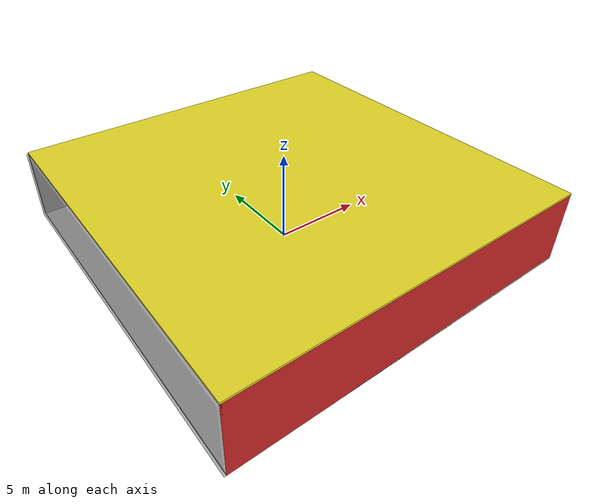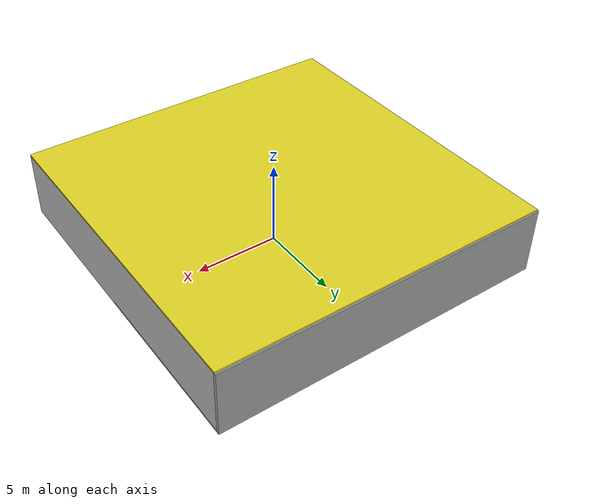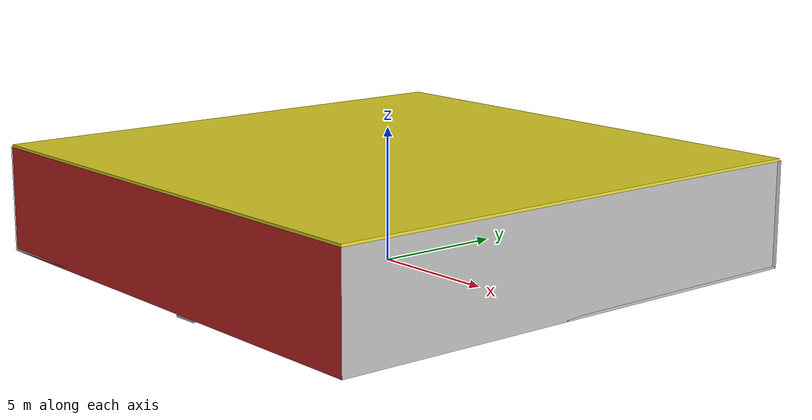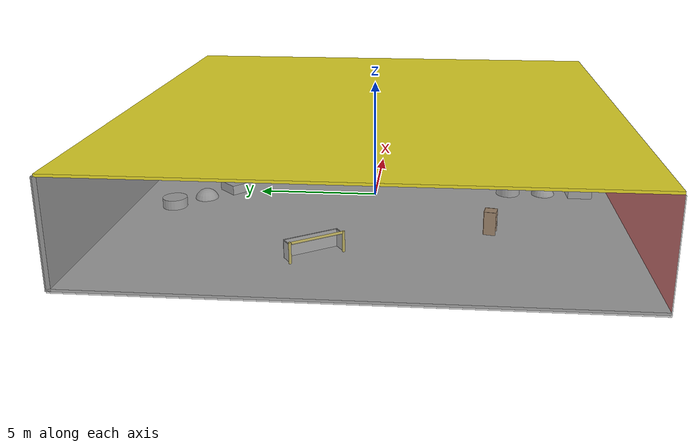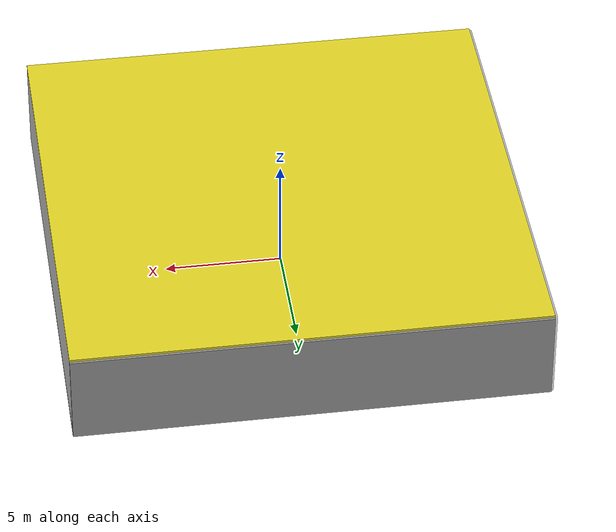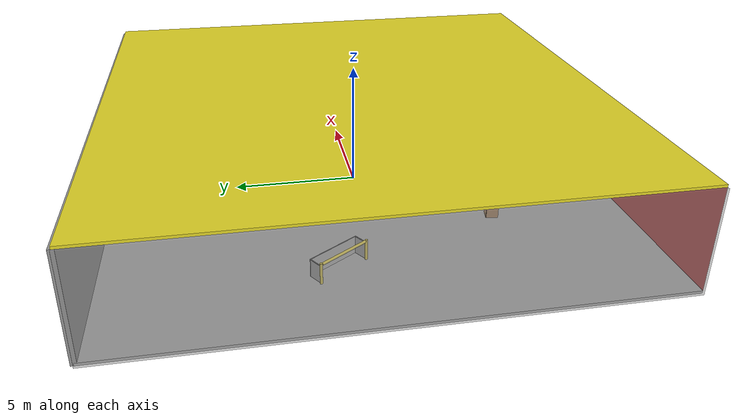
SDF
<sdf version="1.4">
 <world name="default">
  <physics type="ode">
   <max_step_size>0.001</max_step_size>
   <real_time_factor>1</real_time_factor>
   <real_time_update_rate>1000</real_time_update_rate>
   <gravity>0 0 -9.8</gravity>
  </physics>
  <scene><ambient>0.4 0.4 0.4 1</ambient><background>0.7 0.7 0.7 1</background><shadows>1</shadows></scene>
  <model name="Surrounding">
   <static>1</static>
   <link name="Ceiling">
    <collision name="Ceiling_Collision"><geometry><box><size>20 20 0.1</size></box></geometry></collision>
    <visual name="Ceiling_Visual">
     <geometry><box><size>20 20 0.1</size></box></geometry>
     <material>
      <script><uri>file://media/materials/scripts/gazebo.material</uri><name>Gazebo/Yellow</name></script>
     </material>
    </visual>
    <pose>0 0 4.05 0 0 0</pose>
   </link>
   <link name="Wall_South">
    <collision name="Wall_South_Collision">
     <geometry><box><size>20 0 4</size></box></geometry>
     <pose>0 0 2 0 -0 0</pose>
    </collision>
    <visual name="Wall_South_Visual">
     <pose>0 0 2 0 -0 0</pose>
     <geometry><box><size>20 0 4</size></box></geometry>
     <material>
      <script><uri>file://media/materials/scripts/gazebo.material</uri><name>Gazebo/Red</name></script>
     </material>
    </visual>
    <velocity_decay><linear>0</linear><angular>0</angular></velocity_decay>
    <pose>0 -10 0 0 -0 0</pose>
   </link>
   <link name="Wall_East">
    <collision name="Wall_21_Collision">
     <geometry><box><size>20 0 4</size></box></geometry>
     <pose>0 0 2 0 -0 0</pose>
    </collision>
    <visual name="Wall_21_Visual">
     <pose>0 0 2 0 -0 0</pose>
     <geometry><box><size>20 0 4</size></box></geometry>
     <material>
      <script><uri>file://media/materials/scripts/gazebo.material</uri><name>Gazebo/LightOff</name></script>
     </material>
    </visual>
    <velocity_decay><linear>0</linear><angular>0</angular></velocity_decay>
    <pose>10 0 0 0 -0 1.5708</pose>
   </link>
   <link name="Wall_North">
    <collision name="Wall_22_Collision">
     <geometry><box><size>20 0.2 4</size></box></geometry>
     <pose>0 0 2 0 -0 0</pose>
    </collision>
    <visual name="Wall_22_Visual">
     <pose>0 0 2 0 -0 0</pose>
     <geometry><box><size>20 0.2 4</size></box></geometry>
     <material>
      <script><uri>file://media/materials/scripts/gazebo.material</uri><name>Gazebo/GreyGradientSky</name></script>
     </material>
    </visual>
    <velocity_decay><linear>0</linear><angular>0</angular></velocity_decay>
    <pose>0 10 0 0 -0 0</pose>
   </link>
   <link name="Wall_West">
    <collision name="Wall_23_Collision">
     <geometry><box><size>20 0.2 4</size></box></geometry>
     <pose>0 0 2 0 -0 0</pose>
    </collision>
    <visual name="Wall_23_Visual">
     <pose>0 0 2 0 -0 0</pose>
     <geometry><box><size>20 0.2 4</size></box></geometry>
     <material>
      <script><uri>file://media/materials/scripts/gazebo.material</uri><name>Gazebo/GreyTransparent</name></script>
     </material>
    </visual>
    <velocity_decay><linear>0</linear><angular>0</angular></velocity_decay>
    <pose>-10 0 0 0 0 -1.5708</pose>
   </link>
   <link name="Ground_link">
    <collision name="collision">
     <pose>0 0 .05 0 -0 0</pose>
     <geometry><box><size>20 20 0.1</size></box></geometry>
    </collision>
    <visual name="visual">
     <pose>0 0 .05 0 -0 0</pose>
     <geometry><box><size>20 20 0.1</size></box></geometry>
     <material>
      <script><uri>file://media/materials/scripts/gazebo.material</uri><name>Gazebo/PioneerBody</name></script>
     </material>
    </visual>
   </link>
   <static>1</static>
  </model>
  <spherical_coordinates>
   <surface_model>EARTH_WGS84</surface_model>
   <latitude_deg>0</latitude_deg>
   <longitude_deg>0</longitude_deg>
   <elevation>0</elevation>
   <heading_deg>0</heading_deg>
  </spherical_coordinates>
  <light name="lightball_0" type="diffuse">
   <diffuse>0.8 0.8 0.8 1</diffuse>
   <specular>0.2 0.2 0.2 1</specular>
   <attenuation>
    <range>100</range>
    <constant>0.7</constant>
    <linear>0.01</linear>
    <quadratic>0.001</quadratic>
   </attenuation>
   <direction>-0.5 0.1 -0.9</direction>
   <pose>2.77074673341 1.29480423304 0.894307142504 0 0 0</pose>
  </light>
  <light name="lightball_1" type="diffuse">
   <diffuse>0.8 0.8 0.8 1</diffuse>
   <specular>0.2 0.2 0.2 1</specular>
   <attenuation>
    <range>100</range>
    <constant>0.7</constant>
    <linear>0.01</linear>
    <quadratic>0.001</quadratic>
   </attenuation>
   <direction>-0.5 0.1 -0.9</direction>
   <pose>7.88319031961 7.49591136902 3.34892950769 0 0 0</pose>
  </light>
  <light name="lightball_2" type="diffuse">
   <diffuse>0.8 0.8 0.8 1</diffuse>
   <specular>0.2 0.2 0.2 1</specular>
   <attenuation>
    <range>100</range>
    <constant>0.7</constant>
    <linear>0.01</linear>
    <quadratic>0.001</quadratic>
   </attenuation>
   <direction>-0.5 0.1 -0.9</direction>
   <pose>3.84524929823 9.18764085021 1.45797759008 0 0 0</pose>
  </light>
  <light name="lightball_3" type="diffuse">
   <diffuse>0.8 0.8 0.8 1</diffuse>
   <specular>0.2 0.2 0.2 1</specular>
   <attenuation>
    <range>100</range>
    <constant>0.7</constant>
    <linear>0.01</linear>
    <quadratic>0.001</quadratic>
   </attenuation>
   <direction>-0.5 0.1 -0.9</direction>
   <pose>8.29260102463 -7.54291536438 2.02276269698 0 0 0</pose>
  </light>
  <light name="lightball_4" type="diffuse">
   <diffuse>0.8 0.8 0.8 1</diffuse>
   <specular>0.2 0.2 0.2 1</specular>
   <attenuation>
    <range>100</range>
    <constant>0.7</constant>
    <linear>0.01</linear>
    <quadratic>0.001</quadratic>
   </attenuation>
   <direction>-0.5 0.1 -0.9</direction>
   <pose>8.18406441916 4.09082425144 2.73418832453 0 0 0</pose>
  </light>
  <light name="lightball_5" type="diffuse">
   <diffuse>0.8 0.8 0.8 1</diffuse>
   <specular>0.2 0.2 0.2 1</specular>
   <attenuation>
    <range>100</range>
    <constant>0.7</constant>
    <linear>0.01</linear>
    <quadratic>0.001</quadratic>
   </attenuation>
   <direction>-0.5 0.1 -0.9</direction>
   <pose>-2.12552373734 5.00829817112 3.10157487597 0 0 0</pose>
  </light>
  <light name="lightball_6" type="diffuse">
   <diffuse>0.8 0.8 0.8 1</diffuse>
   <specular>0.2 0.2 0.2 1</specular>
   <attenuation>
    <range>100</range>
    <constant>0.7</constant>
    <linear>0.01</linear>
    <quadratic>0.001</quadratic>
   </attenuation>
   <direction>-0.5 0.1 -0.9</direction>
   <pose>4.71174667523 -7.52556962167 1.62659356433 0 0 0</pose>
  </light>
  <light name="lightball_7" type="diffuse">
   <diffuse>0.8 0.8 0.8 1</diffuse>
   <specular>0.2 0.2 0.2 1</specular>
   <attenuation>
    <range>100</range>
    <constant>0.7</constant>
    <linear>0.01</linear>
    <quadratic>0.001</quadratic>
   </attenuation>
   <direction>-0.5 0.1 -0.9</direction>
   <pose>1.40371785834 6.39975805026 0.646072972847 0 0 0</pose>
  </light>
  <light name="lightball_8" type="diffuse">
   <diffuse>0.8 0.8 0.8 1</diffuse>
   <specular>0.2 0.2 0.2 1</specular>
   <attenuation>
    <range>100</range>
    <constant>0.7</constant>
    <linear>0.01</linear>
    <quadratic>0.001</quadratic>
   </attenuation>
   <direction>-0.5 0.1 -0.9</direction>
   <pose>-4.348990264 -6.81891278174 3.43742198964 0 0 0</pose>
  </light>
  <include>
   <uri>model://robocup_3Dsim_goal</uri>
   <pose>-6.83800294429 1.52729464001 0 0 0 0.584114741127</pose>
  </include>
  <include><uri>model://cabinet</uri><pose>-4.10169215002 -4.74109583433 0 0 0 1.37989612374</pose></include>
  <include>
   <uri>model://textured_shapes</uri>
   <pose>-1.21397229067 7.11791643254 0 0 0 0.802636986149</pose>
  </include>
  <include>
   <uri>model://textured_shapes</uri>
   <pose>0.365390683998 -7.23600568989 0 0 0 0.0250250449787</pose>
  </include>
  <include><uri>model://cabinet</uri><pose>3.3331108316 -0.991229229925 0 0 0 1.10617402465</pose></include>
  <include><uri>model://table</uri><pose>5.56634410764 4.64460900715 0 0 0 0.523635755814</pose></include>
  <include>
   <uri>model://construction_cone</uri>
   <pose>7.41622014641 -5.2542665517 0 0 0 2.34403538284</pose>
  </include>
  <include>
   <uri>model://robocup_3Dsim_goal</uri>
   <pose>6.62631263215 3.52548011101 0 0 0 2.40509519926</pose>
  </include>
 </world>
</sdf>

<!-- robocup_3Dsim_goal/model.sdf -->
<sdf version="1.5">
  <model name="robocup_3d_goal">
    <static>true</static>
    <link name="left_post">
      <pose>0 1.05 0.45 0 0 0</pose>
      <collision name="collision">
        <geometry>
          <cylinder>
            <radius>0.05</radius>
            <length>0.9</length>
          </cylinder>
        </geometry>
      </collision>
      <visual name="visual">
        <geometry>
          <cylinder>
            <radius>0.05</radius>
            <length>0.9</length>
          </cylinder>
        </geometry>
        <material>
          <script>
            <uri>file://media/materials/scripts/gazebo.material</uri>
            <name>Gazebo/ZincYellow</name>
          </script>
        </material>
      </visual>
    </link>
    <link name="left_support_horiz_lower">
      <pose>0.30 1.05 0.01 0 0 0</pose>
      <collision name="collision">
        <geometry>
          <box>
            <size>0.50 0.02 0.02</size>
          </box>
        </geometry>
      </collision>
      <visual name="visual">
        <geometry>
          <box>
            <size>0.50 0.02 0.02</size>
          </box>
        </geometry>
        <material>
          <script>
            <uri>file://media/materials/scripts/gazebo.material</uri>
            <name>Gazebo/White</name>
          </script>
        </material>
      </visual>
    </link>
    <link name="left_support_horiz_upper">
      <pose>0.30 1.05 0.79 0 0 0</pose>
      <collision name="collision">
        <geometry>
          <box>
            <size>0.50 0.02 0.02</size>
          </box>
        </geometry>
      </collision>
      <visual name="visual">
        <geometry>
          <box>
            <size>0.50 0.02 0.02</size>
          </box>
        </geometry>
        <material>
          <script>
            <uri>file://media/materials/scripts/gazebo.material</uri>
            <name>Gazebo/White</name>
          </script>
        </material>
      </visual>
    </link>
    <link name="left_support_vertical">
      <pose>0.56 1.05 0.4 0 1.5708 0</pose>
      <collision name="collision">
        <geometry>
          <box>
            <size>0.80 0.02 0.02</size>
          </box>
        </geometry>
      </collision>
      <visual name="visual">
        <geometry>
          <box>
            <size>0.80 0.02 0.02</size>
          </box>
        </geometry>
        <material>
          <script>
            <uri>file://media/materials/scripts/gazebo.material</uri>
            <name>Gazebo/White</name>
          </script>
        </material>
      </visual>
    </link>
    <link name="right_support_horiz_lower">
      <pose>0.30 -1.05 0.01 0 0 0</pose>
      <collision name="collision">
        <geometry>
          <box>
            <size>0.50 0.02 0.02</size>
          </box>
        </geometry>
      </collision>
      <visual name="visual">
        <geometry>
          <box>
            <size>0.50 0.02 0.02</size>
          </box>
        </geometry>
        <material>
          <script>
            <uri>file://media/materials/scripts/gazebo.material</uri>
            <name>Gazebo/White</name>
          </script>
        </material>
      </visual>
    </link>
    <link name="right_support_horiz_upper">
      <pose>0.30 -1.05 0.79 0 0 0</pose>
      <collision name="collision">
        <geometry>
          <box>
            <size>0.50 0.02 0.02</size>
          </box>
        </geometry>
      </collision>
      <visual name="visual">
        <geometry>
          <box>
            <size>0.50 0.02 0.02</size>
          </box>
        </geometry>
        <material>
          <script>
            <uri>file://media/materials/scripts/gazebo.material</uri>
            <name>Gazebo/White</name>
          </script>
        </material>
      </visual>
    </link>
    <link name="right_support_vertical">
      <pose>0.56 -1.05 0.4 0 1.5708 0</pose>
      <collision name="collision">
        <geometry>
          <box>
            <size>0.80 0.02 0.02</size>
          </box>
        </geometry>
      </collision>
      <visual name="visual">
        <geometry>
          <box>
            <size>0.80 0.02 0.02</size>
          </box>
        </geometry>
        <material>
          <script>
            <uri>file://media/materials/scripts/gazebo.material</uri>
            <name>Gazebo/White</name>
          </script>
        </material>
      </visual>
    </link>
    <link name="center_support_horiz_lower">
      <pose>0.56 0 0.01 0 1.5708 0</pose>
      <collision name="collision">
        <geometry>
          <box>
            <size>0.02 2.08 0.02</size>
          </box>
        </geometry>
      </collision>
      <visual name="visual">
        <geometry>
          <box>
            <size>0.02 2.08 0.02</size>
          </box>
        </geometry>
        <material>
          <script>
            <uri>file://media/materials/scripts/gazebo.material</uri>
            <name>Gazebo/White</name>
          </script>
        </material>
      </visual>
    </link>
    <link name="center_support_horiz_upper">
      <pose>0.56 0 0.79 0 1.5708 0</pose>
      <collision name="collision">
        <geometry>
          <box>
            <size>0.02 2.08 0.02</size>
          </box>
        </geometry>
      </collision>
      <visual name="visual">
        <geometry>
          <box>
            <size>0.02 2.08 0.02</size>
          </box>
        </geometry>
        <material>
          <script>
            <uri>file://media/materials/scripts/gazebo.material</uri>
            <name>Gazebo/White</name>
          </script>
        </material>
      </visual>
    </link>
    <link name="right_post">
      <pose>0 -1.05 0.45 0 0 0</pose>
      <collision name="collision">
        <geometry>
          <cylinder>
            <radius>0.05</radius>
            <length>0.9</length>
          </cylinder>
        </geometry>
      </collision>
      <visual name="visual">
        <geometry>
          <cylinder>
            <radius>0.05</radius>
            <length>0.9</length>
          </cylinder>
        </geometry>
        <material>
          <script>
            <uri>file://media/materials/scripts/gazebo.material</uri>
            <name>Gazebo/ZincYellow</name>
          </script>
        </material>
      </visual>
    </link>
    <link name="crossbar">
      <pose>0 0 0.85 1.57 1.57 0</pose>
      <collision name="collision">
        <geometry>
          <cylinder>
            <radius>0.05</radius>
            <length>2.0</length>
          </cylinder>
        </geometry>
      </collision>
      <visual name="visual">
        <geometry>
          <cylinder>
            <radius>0.05</radius>
            <length>2.0</length>
          </cylinder>
        </geometry>
        <material>
          <script>
            <uri>file://media/materials/scripts/gazebo.material</uri>
            <name>Gazebo/ZincYellow</name>
          </script>
        </material>
      </visual>
    </link>
    <link name="center_net">
      <pose>0.56 0 0.40 0 0 0</pose>
      <collision name="collision">
        <geometry>
          <box>
            <size>0.01 2.1 0.80</size>
          </box>
        </geometry>
      </collision>
      <visual name="visual">
        <geometry>
          <box>
            <size>0.01 2.1 0.80</size>
          </box>
        </geometry>
        <material>
          <script>
            <uri>model://../model_source/models/robocup09_spl_field/materials/scripts/</uri>
            <uri>model://../model_source/models/robocup09_spl_field/materials/textures/</uri>
            <name>RoboCup/Net</name>
          </script>
        </material>
      </visual>
    </link>
    <link name="left_net">
      <pose>0.30 1.05 0.40 0 0 0</pose>
      <collision name="collision">
        <geometry>
          <box>
            <size>0.50 0.01 0.76</size>
          </box>
        </geometry>
      </collision>
      <visual name="visual">
        <geometry>
          <box>
            <size>0.50 0.01 0.76</size>
          </box>
        </geometry>
        <material>
          <script>
            <uri>model://../model_source/models/robocup09_spl_field/materials/scripts/</uri>
            <uri>model://../model_source/models/robocup09_spl_field/materials/textures/</uri>
            <name>RoboCup/Net</name>
          </script>
        </material>
      </visual>
    </link>
    <link name="right_net">
      <pose>0.30 -1.05 0.40 0 0 0</pose>
      <collision name="collision">
        <geometry>
          <box>
            <size>0.50 0.01 0.76</size>
          </box>
        </geometry>
      </collision>
      <visual name="visual">
        <geometry>
          <box>
            <size>0.50 0.01 0.76</size>
          </box>
        </geometry>
        <material>
          <script>
            <uri>model://../model_source/models/robocup09_spl_field/materials/scripts/</uri>
            <uri>model://../model_source/models/robocup09_spl_field/materials/textures/</uri>
            <name>RoboCup/Net</name>
          </script>
        </material>
      </visual>
    </link>
  </model>
</sdf>

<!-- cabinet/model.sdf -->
<sdf version="1.5">
  <model name="cabinet">
    <static>true</static>
    <link name="cabinet_bottom_plate">
      <inertial>
        <pose>0 0 -1 0 0 0</pose>
        <inertia>
          <ixx>2.050000</ixx>
          <ixy>0</ixy>
          <ixz>0</ixz>
          <iyy>2.050000</iyy>
          <iyz>0</iyz>
          <izz>2.050000</izz>
        </inertia>
        <mass>25.000000</mass>
      </inertial>
      <collision name="cabinet_bottom_plate_geom">
        <pose>0 0 0.010000 0 0 0</pose>
        <geometry>
          <box>
            <size>0.450000 0.450000 0.020000</size>
          </box>
        </geometry>
      </collision>
      <visual name="cabinet_bottom_plate_geom_visual">
        <pose>0 0 0.010000 0 0 0</pose>
        <geometry>
          <box>
            <size>0.450000 0.450000 0.020000</size>
          </box>
        </geometry>
        <material>
          <script>
            <uri>model://media/materials/scripts/gazebo.material</uri>
            <name>Gazebo/Wood</name>
          </script>
        </material>
      </visual>
      <collision name="cabinet_bottom_plate_geom_cabinet_back_plate">
        <pose>0.235000 0 0.510000 0 0 0</pose>
        <geometry>
          <box>
            <size>0.020000 0.450000 1.020000</size>
          </box>
        </geometry>
      </collision>
      <visual name="cabinet_bottom_plate_geom_cabinet_back_plate_visual">
        <pose>0.235000 0 0.510000 0 0 0</pose>
        <geometry>
          <box>
            <size>0.020000 0.450000 1.020000</size>
          </box>
        </geometry>
        <material>
          <script>
            <uri>model://media/materials/scripts/gazebo.material</uri>
            <name>Gazebo/Wood</name>
          </script>
        </material>
      </visual>
      <collision name="cabinet_bottom_plate_geom_cabinet_left_plate">
        <pose>0 0.235000 0.510000 0 0 0</pose>
        <geometry>
          <box>
            <size>0.450000 0.020000 1.020000</size>
          </box>
        </geometry>
      </collision>
      <visual name="cabinet_bottom_plate_geom_cabinet_left_plate_visual">
        <pose>0 0.235000 0.510000 0 0 0</pose>
        <geometry>
          <box>
            <size>0.450000 0.020000 1.020000</size>
          </box>
        </geometry>
        <material>
          <script>
            <uri>model://media/materials/scripts/gazebo.material</uri>
            <name>Gazebo/Wood</name>
          </script>
        </material>
      </visual>
      <collision name="cabinet_bottom_plate_geom_cabinet_middle_plate">
        <pose>0 0 0.510000 0 0 0</pose>
        <geometry>
          <box>
            <size>0.450000 0.450000 0.020000</size>
          </box>
        </geometry>
      </collision>
      <visual name="cabinet_bottom_plate_geom_cabinet_middle_plate_visual">
        <pose>0 0 0.510000 0 0 0</pose>
        <geometry>
          <box>
            <size>0.450000 0.450000 0.020000</size>
          </box>
        </geometry>
        <material>
          <script>
            <uri>model://media/materials/scripts/gazebo.material</uri>
            <name>Gazebo/Wood</name>
          </script>
        </material>
      </visual>
      <collision name="cabinet_bottom_plate_geom_cabinet_right_plate">
        <pose>0 -0.235000 0.510000 0 0 0</pose>
        <geometry>
          <box>
            <size>0.450000 0.020000 1.020000</size>
          </box>
        </geometry>
      </collision>
      <visual name="cabinet_bottom_plate_geom_cabinet_right_plate_visual">
        <pose>0 -0.235000 0.510000 0 0 0</pose>
        <geometry>
          <box>
            <size>0.450000 0.020000 1.020000</size>
          </box>
        </geometry>
        <material>
          <script>
            <uri>model://media/materials/scripts/gazebo.material</uri>
            <name>Gazebo/Wood</name>
          </script>
        </material>
      </visual>
      <collision name="cabinet_bottom_plate_geom_cabinet_top_plate">
        <pose>0 0 1.010000 0 0 0</pose>
        <geometry>
          <box>
            <size>0.450000 0.450000 0.020000</size>
          </box>
        </geometry>
      </collision>
      <visual name="cabinet_bottom_plate_geom_cabinet_top_plate_visual">
        <pose>0 0 1.010000 0 0 0</pose>
        <geometry>
          <box>
            <size>0.450000 0.450000 0.020000</size>
          </box>
        </geometry>
        <material>
          <script>
            <uri>model://media/materials/scripts/gazebo.material</uri>
            <name>Gazebo/Wood</name>
          </script>
        </material>
      </visual>
    </link>
  </model>
</sdf>

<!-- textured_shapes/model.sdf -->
<sdf version="1.6">
  <model name="textured_shapes">
    <pose>0 0 0.5 0 0 0</pose>
    <link name="box">
      <pose>0 -1.5 0 0 0 0</pose>
      <collision name="collision">
        <geometry>
          <box>
            <size>1 1 1</size>
          </box>
        </geometry>
      </collision>
      <visual name="visual">
        <geometry>
          <box>
            <size>1 1 1</size>
          </box>
        </geometry>
        <material>
          <script>
            <uri>model://../model_source/models/textured_shapes/materials/scripts</uri>
            <uri>model://../model_source/models/textured_shapes/materials/textures</uri>
            <name>TexturedShape/Squares</name>
          </script>
        </material>
      </visual>
    </link>
    <link name="sphere">
      <collision name="collision">
        <geometry>
          <sphere>
            <radius>0.5</radius>
          </sphere>
        </geometry>
      </collision>
      <visual name="visual">
        <geometry>
          <sphere>
            <radius>0.5</radius>
          </sphere>
        </geometry>
        <material>
          <script>
            <uri>model://../model_source/models/textured_shapes/materials/scripts</uri>
            <uri>model://../model_source/models/textured_shapes/materials/textures</uri>
            <name>TexturedShape/Squares</name>
          </script>
        </material>
      </visual>
    </link>
    <link name="cylinder">
      <pose>0 1.5 0 0 0 0</pose>
      <collision name="collision">
        <geometry>
          <cylinder>
            <radius>0.5</radius>
            <length>1</length>
          </cylinder>
        </geometry>
      </collision>
      <visual name="visual">
        <geometry>
          <cylinder>
            <radius>0.5</radius>
            <length>1</length>
          </cylinder>
        </geometry>
        <material>
          <script>
            <uri>model://../model_source/models/textured_shapes/materials/scripts</uri>
            <uri>model://../model_source/models/textured_shapes/materials/textures</uri>
            <name>TexturedShape/Squares</name>
          </script>
        </material>
      </visual>
    </link>
  </model>
</sdf>

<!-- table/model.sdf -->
<sdf version="1.5">
  <model name="table">
    <static>true</static>
    <link name="link">
      <collision name="surface">
        <pose>0 0 1.0 0 0 0</pose>
        <geometry>
          <box>
            <size>1.5 0.8 0.03</size>
          </box>
        </geometry>
        <surface>
          <friction>
            <ode>
              <mu>0.6</mu>
              <mu2>0.6</mu2>
            </ode>
          </friction>
        </surface>
      </collision>
      <visual name="visual1">
        <pose>0 0 1.0 0 0 0</pose>
        <geometry>
          <box>
            <size>1.5 0.8 0.03</size>
          </box>
        </geometry>
        <material>
          <script>
            <uri>model://media/materials/scripts/gazebo.material</uri>
            <name>Gazebo/Wood</name>
          </script>
        </material>
      </visual>
      <collision name="front_left_leg">
        <pose>0.68 0.38 0.5 0 0 0</pose>
        <geometry>
          <cylinder>
            <radius>0.02</radius>
            <length>1.0</length>
          </cylinder>
        </geometry>
      </collision>
      <visual name="front_left_leg">
        <pose>0.68 0.38 0.5 0 0 0</pose>
        <geometry>
          <cylinder>
            <radius>0.02</radius>
            <length>1.0</length>
          </cylinder>
        </geometry>
        <material>
          <script>
            <uri>model://media/materials/scripts/gazebo.material</uri>
            <name>Gazebo/Grey</name>
          </script>
        </material>
      </visual>
      <collision name="front_right_leg">
        <pose>0.68 -0.38 0.5 0 0 0</pose>
        <geometry>
          <cylinder>
            <radius>0.02</radius>
            <length>1.0</length>
          </cylinder>
        </geometry>
      </collision>
      <visual name="front_right_leg">
        <pose>0.68 -0.38 0.5 0 0 0</pose>
        <geometry>
          <cylinder>
            <radius>0.02</radius>
            <length>1.0</length>
          </cylinder>
        </geometry>
        <material>
          <script>
            <uri>model://media/materials/scripts/gazebo.material</uri>
            <name>Gazebo/Grey</name>
          </script>
        </material>
      </visual>
      <collision name="back_right_leg">
        <pose>-0.68 -0.38 0.5 0 0 0</pose>
        <geometry>
          <cylinder>
            <radius>0.02</radius>
            <length>1.0</length>
          </cylinder>
        </geometry>
      </collision>
      <visual name="back_right_leg">
        <pose>-0.68 -0.38 0.5 0 0 0</pose>
        <geometry>
          <cylinder>
            <radius>0.02</radius>
            <length>1.0</length>
          </cylinder>
        </geometry>
        <material>
          <script>
            <uri>model://media/materials/scripts/gazebo.material</uri>
            <name>Gazebo/Grey</name>
          </script>
        </material>
      </visual>
      <collision name="back_left_leg">
        <pose>-0.68 0.38 0.5 0 0 0</pose>
        <geometry>
          <cylinder>
            <radius>0.02</radius>
            <length>1.0</length>
          </cylinder>
        </geometry>
      </collision>
      <visual name="back_left_leg">
        <pose>-0.68 0.38 0.5 0 0 0</pose>
        <geometry>
          <cylinder>
            <radius>0.02</radius>
            <length>1.0</length>
          </cylinder>
        </geometry>
        <material>
          <script>
            <uri>model://media/materials/scripts/gazebo.material</uri>
            <name>Gazebo/Grey</name>
          </script>
        </material>
      </visual>
    </link>
  </model>
</sdf>

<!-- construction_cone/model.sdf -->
<sdf version="1.5">
  <model name="Construction Cone">
    <link name="link">
      <collision name="collision">
        <geometry>
          <mesh>
            <scale>10 10 10</scale>
            <uri>file://isr-testbed/construction_cone/meshes/construction_cone.dae</uri>
          </mesh>
        </geometry>
      </collision>
      <visual name="visual">
        <geometry>
          <mesh>
            <scale>10 10 10</scale>
            <uri>file://isr-testbed/construction_cone/meshes/construction_cone.dae</uri>
          </mesh>
        </geometry>
      </visual>
    </link>
  </model>
</sdf>
